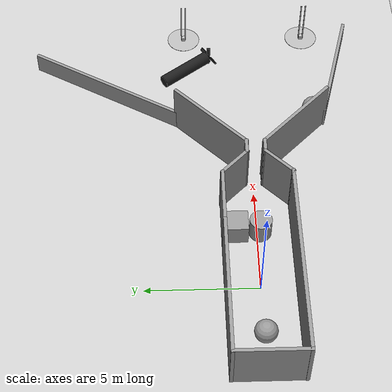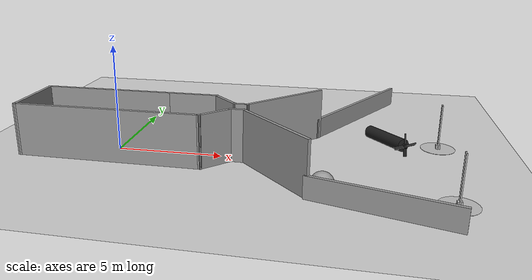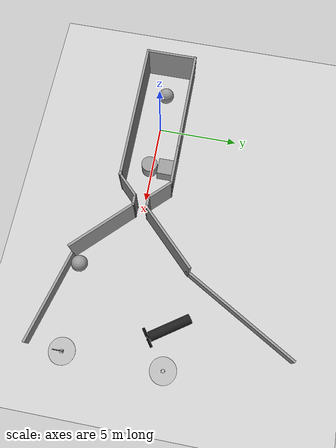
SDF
<sdf version="1.7">
 <world name="default">
  <light name="sun" type="directional">
   <pose>0 0 10 0 -0 0</pose>
   <diffuse>0.8 0.8 0.8 1</diffuse>
   <specular>0.2 0.2 0.2 1</specular>
   <attenuation>
    <range>1000</range>
    <constant>0.9</constant>
    <linear>0.01</linear>
    <quadratic>0.001</quadratic>
   </attenuation>
   <direction>-0.5 0.1 -0.9</direction>
   <spot><inner_angle>0</inner_angle><outer_angle>0</outer_angle><falloff>0</falloff></spot>
  </light>
  <model name="ground_plane">
   <static>1</static>
   <link name="link">
    <collision name="collision">
     <geometry><plane><normal>0 0 1</normal><size>100 100</size></plane></geometry>
     <surface><friction><ode><mu>100</mu><mu2>50</mu2></ode></friction></surface>
    </collision>
    <visual name="visual">
     <cast_shadows>0</cast_shadows>
     <geometry><plane><normal>0 0 1</normal><size>100 100</size></plane></geometry>
     <material>
      <script><uri>file://media/materials/scripts/gazebo.material</uri><name>Gazebo/Grey</name></script>
     </material>
    </visual>
   </link>
  </model>
  <gravity>0 0 -9.8</gravity>
  <magnetic_field>6e-06 2.3e-05 -4.2e-05</magnetic_field>
  <atmosphere type="adiabatic"/>
  <physics type="ode">
   <max_step_size>0.001</max_step_size>
   <real_time_factor>1</real_time_factor>
   <real_time_update_rate>1000</real_time_update_rate>
  </physics>
  <scene><ambient>0.4 0.4 0.4 1</ambient><background>0.7 0.7 0.7 1</background><shadows>1</shadows></scene>
  <audio><device>default</device></audio>
  <spherical_coordinates>
   <surface_model>EARTH_WGS84</surface_model>
   <latitude_deg>0</latitude_deg>
   <longitude_deg>0</longitude_deg>
   <elevation>0</elevation>
   <heading_deg>0</heading_deg>
  </spherical_coordinates>
  <model name="test_room">
   <pose>2.5 -0.05 0 0 -0 0</pose>
   <link name="Wall_12">
    <collision name="Wall_12_Collision">
     <geometry><box><size>8.77828 0.15 2.5</size></box></geometry>
     <pose>0 0 1.25 0 -0 0</pose>
    </collision>
    <visual name="Wall_12_Visual">
     <pose>0 0 1.25 0 -0 0</pose>
     <geometry><box><size>8.77828 0.15 2.5</size></box></geometry>
     <material>
      <script><uri>file://media/materials/scripts/gazebo.material</uri><name>Gazebo/Grey</name></script>
      <ambient>1 1 1 1</ambient>
     </material>
     <meta><layer>0</layer></meta>
    </visual>
    <pose>-2.46907 -1.55212 0 0 -0 0.002016</pose>
   </link>
   <link name="Wall_13">
    <collision name="Wall_13_Collision">
     <geometry><box><size>0.25 0.15 2.5</size></box></geometry>
     <pose>0 0 1.25 0 -0 0</pose>
    </collision>
    <visual name="Wall_13_Visual">
     <pose>0 0 1.25 0 -0 0</pose>
     <geometry><box><size>0.25 0.15 2.5</size></box></geometry>
     <material>
      <script><uri>file://media/materials/scripts/gazebo.material</uri><name>Gazebo/Grey</name></script>
      <ambient>1 1 1 1</ambient>
     </material>
     <meta><layer>0</layer></meta>
    </visual>
    <pose>1.89506 -1.54343 0 0 -0 0</pose>
   </link>
   <link name="Wall_14">
    <collision name="Wall_14_Collision">
     <geometry><box><size>1.75 0.15 2.5</size></box></geometry>
     <pose>0 0 1.25 0 -0 0</pose>
    </collision>
    <visual name="Wall_14_Visual">
     <pose>0 0 1.25 0 -0 0</pose>
     <geometry><box><size>1.75 0.15 2.5</size></box></geometry>
     <material>
      <script><uri>file://media/materials/scripts/gazebo.material</uri><name>Gazebo/Grey</name></script>
      <ambient>1 1 1 1</ambient>
     </material>
     <meta><layer>0</layer></meta>
    </visual>
    <pose>2.51074 -0.977739 0 0 -0 0.785398</pose>
   </link>
   <link name="Wall_15">
    <collision name="Wall_15_Collision">
     <geometry><box><size>0.75 0.15 2.5</size></box></geometry>
     <pose>0 0 1.25 0 -0 0</pose>
    </collision>
    <visual name="Wall_15_Visual">
     <pose>0 0 1.25 0 -0 0</pose>
     <geometry><box><size>0.75 0.15 2.5</size></box></geometry>
     <material>
      <script><uri>file://media/materials/scripts/gazebo.material</uri><name>Gazebo/Grey</name></script>
      <ambient>1 1 1 1</ambient>
     </material>
     <meta><layer>0</layer></meta>
    </visual>
    <pose>3.37643 -0.412054 0 0 -0 0</pose>
   </link>
   <link name="Wall_17">
    <collision name="Wall_17_Collision">
     <geometry><box><size>0.75 0.15 2.5</size></box></geometry>
     <pose>0 0 1.25 0 -0 0</pose>
    </collision>
    <visual name="Wall_17_Visual">
     <pose>0 0 1.25 0 -0 0</pose>
     <geometry><box><size>0.75 0.15 2.5</size></box></geometry>
     <material>
      <script><uri>file://media/materials/scripts/gazebo.material</uri><name>Gazebo/Grey</name></script>
      <ambient>1 1 1 1</ambient>
     </material>
     <meta><layer>0</layer></meta>
    </visual>
    <pose>3.37643 0.412054 0 0 -0 0</pose>
   </link>
   <link name="Wall_2">
    <collision name="Wall_2_Collision">
     <geometry><box><size>6.52829 0.15 2.5</size></box></geometry>
     <pose>0 0 1.25 0 -0 0</pose>
    </collision>
    <visual name="Wall_2_Visual">
     <pose>0 0 1.25 0 -0 0</pose>
     <geometry><box><size>6.52829 0.15 2.5</size></box></geometry>
     <material>
      <script><uri>file://media/materials/scripts/gazebo.material</uri><name>Gazebo/Grey</name></script>
      <ambient>1 1 1 1</ambient>
     </material>
     <meta><layer>0</layer></meta>
    </visual>
    <pose>-3.59407 1.53473 0 0 -0 -3.13887</pose>
   </link>
   <link name="Wall_27">
    <collision name="Wall_27_Collision">
     <geometry><box><size>4.5 0.15 2.5</size></box></geometry>
     <pose>0 0 1.25 0 -0 0</pose>
    </collision>
    <visual name="Wall_27_Visual">
     <pose>0 0 1.25 0 -0 0</pose>
     <geometry><box><size>4.5 0.15 2.5</size></box></geometry>
     <material>
      <script><uri>file://media/materials/scripts/gazebo.material</uri><name>Gazebo/Grey</name></script>
      <ambient>1 1 1 1</ambient>
     </material>
     <meta><layer>0</layer></meta>
    </visual>
    <pose>5.21439 1.95001 0 0 -0 0.785398</pose>
   </link>
   <link name="Wall_29">
    <collision name="Wall_29_Collision">
     <geometry><box><size>4.5 0.15 2.5</size></box></geometry>
     <pose>0 0 1.25 0 -0 0</pose>
    </collision>
    <visual name="Wall_29_Visual">
     <pose>0 0 1.25 0 -0 0</pose>
     <geometry><box><size>4.5 0.15 2.5</size></box></geometry>
     <material>
      <script><uri>file://media/materials/scripts/gazebo.material</uri><name>Gazebo/Grey</name></script>
      <ambient>1 1 1 1</ambient>
     </material>
     <meta><layer>0</layer></meta>
    </visual>
    <pose>5.21439 -1.95001 0 0 -0 -0.785398</pose>
   </link>
   <link name="Wall_3">
    <collision name="Wall_3_Collision">
     <geometry><box><size>3.23685 0.15 2.5</size></box></geometry>
     <pose>0 0 1.25 0 -0 0</pose>
    </collision>
    <visual name="Wall_3_Visual">
     <pose>0 0 1.25 0 -0 0</pose>
     <geometry><box><size>3.23685 0.15 2.5</size></box></geometry>
     <material>
      <script><uri>file://media/materials/scripts/gazebo.material</uri><name>Gazebo/Grey</name></script>
      <ambient>1 1 1 1</ambient>
     </material>
     <meta><layer>0</layer></meta>
    </visual>
    <pose>-6.76581 -0.017391 0 0 -0 -1.5708</pose>
   </link>
   <link name="Wall_6">
    <collision name="Wall_6_Collision">
     <geometry><box><size>2.5 0.15 2.5</size></box></geometry>
     <pose>0 0 1.25 0 -0 0</pose>
    </collision>
    <visual name="Wall_6_Visual">
     <pose>0 0 1.25 0 -0 0</pose>
     <geometry><box><size>2.5 0.15 2.5</size></box></geometry>
     <material>
      <script><uri>file://media/materials/scripts/gazebo.material</uri><name>Gazebo/Grey</name></script>
      <ambient>1 1 1 1</ambient>
     </material>
     <meta><layer>0</layer></meta>
    </visual>
    <pose>0.770058 1.54343 0 0 -0 0</pose>
   </link>
   <link name="Wall_7">
    <collision name="Wall_7_Collision">
     <geometry><box><size>1.75 0.15 2.5</size></box></geometry>
     <pose>0 0 1.25 0 -0 0</pose>
    </collision>
    <visual name="Wall_7_Visual">
     <pose>0 0 1.25 0 -0 0</pose>
     <geometry><box><size>1.75 0.15 2.5</size></box></geometry>
     <material>
      <script><uri>file://media/materials/scripts/gazebo.material</uri><name>Gazebo/Grey</name></script>
      <ambient>1 1 1 1</ambient>
     </material>
     <meta><layer>0</layer></meta>
    </visual>
    <pose>2.51074 0.977739 0 0 -0 -0.785398</pose>
   </link>
   <static>1</static>
  </model>
  <model name="mass_on_rails">
   <link name="base">
    <inertial>
     <mass>100</mass>
     <inertia><ixx>1</ixx><ixy>0</ixy><ixz>0</ixz><iyy>1</iyy><iyz>0</iyz><izz>1</izz></inertia>
    </inertial>
    <visual name="vis_base">
     <pose>0 0 0.01 0 -0 0</pose>
     <geometry><cylinder><radius>0.8</radius><length>0.01</length></cylinder></geometry>
    </visual>
    <collision name="col_base">
     <pose>0 0 0.01 0 -0 0</pose>
     <geometry><cylinder><radius>0.8</radius><length>0.01</length></cylinder></geometry>
    </collision>
    <visual name="vis_rail1">
     <pose>0 0.1 1.1 0 -0 0</pose>
     <geometry><box><size>0.05 0.05 2.2</size></box></geometry>
    </visual>
    <collision name="col_rail1">
     <pose>0 0.1 1.1 0 -0 0</pose>
     <geometry><box><size>0.05 0.05 2.2</size></box></geometry>
    </collision>
    <visual name="vis_rail2">
     <pose>0 -0.1 1.1 0 -0 0</pose>
     <geometry><box><size>0.05 0.05 2.2</size></box></geometry>
    </visual>
    <collision name="col_rail2">
     <pose>0 -0.1 1.1 0 -0 0</pose>
     <geometry><box><size>0.05 0.05 2.2</size></box></geometry>
    </collision>
   </link>
   <link name="mass">
    <inertial>
     <mass>0.1</mass>
     <pose>0 0 0.1 0 -0 0</pose>
     <inertia><ixx>0.00067</ixx><ixy>0</ixy><ixz>0</ixz><iyy>0.00067</iyy><iyz>0</iyz><izz>0.00067</izz></inertia>
    </inertial>
    <visual name="visual">
     <pose>0 0 0.1 0 -0 0</pose>
     <geometry><box><size>0.2 0.2 0.2</size></box></geometry>
    </visual>
    <collision name="collision">
     <pose>0 0 0.1 0 -0 0</pose>
     <geometry><box><size>0.2 0.2 0.2</size></box></geometry>
    </collision>
   </link>
   <joint name="joint" type="prismatic">
    <parent>base</parent>
    <child>mass</child>
    <axis>
     <dynamics>
      <damping>0.01</damping>
      <friction>0.01</friction>
      <spring_reference>0</spring_reference>
      <spring_stiffness>0</spring_stiffness>
     </dynamics>
     <xyz>0 0 1</xyz>
     <limit><lower>0</lower><upper>2</upper></limit>
    </axis>
   </joint>
   <pose>15 3 -0 1e-06 0 -1.2e-05</pose>
  </model>
  <model name="mass_on_rails_clone">
   <link name="base">
    <inertial>
     <mass>100</mass>
     <inertia><ixx>1</ixx><ixy>0</ixy><ixz>0</ixz><iyy>1</iyy><iyz>0</iyz><izz>1</izz></inertia>
    </inertial>
    <visual name="vis_base">
     <pose>0 0 0.01 0 -0 0</pose>
     <geometry><cylinder><radius>0.8</radius><length>0.01</length></cylinder></geometry>
    </visual>
    <collision name="col_base">
     <pose>0 0 0.01 0 -0 0</pose>
     <geometry><cylinder><radius>0.8</radius><length>0.01</length></cylinder></geometry>
    </collision>
    <visual name="vis_rail1">
     <pose>0 0.1 1.1 0 -0 0</pose>
     <geometry><box><size>0.05 0.05 2.2</size></box></geometry>
    </visual>
    <collision name="col_rail1">
     <pose>0 0.1 1.1 0 -0 0</pose>
     <geometry><box><size>0.05 0.05 2.2</size></box></geometry>
    </collision>
    <visual name="vis_rail2">
     <pose>0 -0.1 1.1 0 -0 0</pose>
     <geometry><box><size>0.05 0.05 2.2</size></box></geometry>
    </visual>
    <collision name="col_rail2">
     <pose>0 -0.1 1.1 0 -0 0</pose>
     <geometry><box><size>0.05 0.05 2.2</size></box></geometry>
    </collision>
   </link>
   <link name="mass">
    <inertial>
     <mass>0.1</mass>
     <pose>0 0 0.1 0 -0 0</pose>
     <inertia><ixx>0.00067</ixx><ixy>0</ixy><ixz>0</ixz><iyy>0.00067</iyy><iyz>0</iyz><izz>0.00067</izz></inertia>
    </inertial>
    <visual name="visual">
     <pose>0 0 0.1 0 -0 0</pose>
     <geometry><box><size>0.2 0.2 0.2</size></box></geometry>
    </visual>
    <collision name="collision">
     <pose>0 0 0.1 0 -0 0</pose>
     <geometry><box><size>0.2 0.2 0.2</size></box></geometry>
    </collision>
   </link>
   <joint name="joint" type="prismatic">
    <parent>base</parent>
    <child>mass</child>
    <axis>
     <dynamics>
      <damping>0.01</damping>
      <friction>0.01</friction>
      <spring_reference>0</spring_reference>
      <spring_stiffness>0</spring_stiffness>
     </dynamics>
     <xyz>0 0 1</xyz>
     <limit><lower>0</lower><upper>2</upper></limit>
    </axis>
   </joint>
   <pose>15 -3 -0 0 0 -2.1e-05</pose>
  </model>
  <model name="submarine_sinking">
   <pose>13.1631 2.05888 0.449061 0.653971 1.49147 -0.316009</pose>
   <link name="body">
    <pose>0 0 -1.07935 0 -0 0</pose>
    <inertial>
     <mass>1102.7</mass>
     <inertia><ixx>645.998</ixx><ixy>0</ixy><ixz>0</ixz><iyy>645.998</iyy><iyz>0</iyz><izz>49.6215</izz></inertia>
    </inertial>
    <visual name="body_visual">
     <geometry><cylinder><radius>0.3</radius><length>2.6</length></cylinder></geometry>
     <material>
      <script><uri>file://media/materials/scripts/gazebo.material</uri><name>Gazebo/Black</name></script>
     </material>
    </visual>
    <collision name="body_collision">
     <geometry><cylinder><radius>0.3</radius><length>2.6</length></cylinder></geometry>
    </collision>
    <visual name="spacer_visual">
     <pose>0 0 1.37855 0 -0 0</pose>
     <geometry><cylinder><radius>0.0933402</radius><length>0.127211</length></cylinder></geometry>
     <material>
      <script><uri>file://media/materials/scripts/gazebo.material</uri><name>Gazebo/Black</name></script>
     </material>
    </visual>
   </link>
   <link name="propeller">
    <pose>0 0 0.3455 3.14159 -0 0</pose>
    <inertial>
     <mass>25.2312</mass>
     <inertia><ixx>0.531907</ixx><ixy>0</ixy><ixz>0</ixz><iyy>0.531907</iyy><iyz>0</iyz><izz>1.0513</izz></inertia>
    </inertial>
    <visual name="blade1_visual">
     <pose>0.34334 0 0 0.785398 -0 0</pose>
     <geometry><box><size>0.5 0.154178 0.05455</size></box></geometry>
     <material>
      <script><uri>file://media/materials/scripts/gazebo.material</uri><name>Gazebo/Black</name></script>
     </material>
    </visual>
    <collision name="blade1_collision">
     <pose>0.34334 0 0 0.785398 -0 0</pose>
     <geometry><box><size>0.5 0.154178 0.05455</size></box></geometry>
    </collision>
    <visual name="blade2_visual">
     <pose>0 0.34334 0 0.785398 0 1.5708</pose>
     <geometry><box><size>0.5 0.154178 0.05455</size></box></geometry>
     <material>
      <script><uri>file://media/materials/scripts/gazebo.material</uri><name>Gazebo/Black</name></script>
     </material>
    </visual>
    <collision name="blade2_collision">
     <pose>0 0.34334 0 0.785398 0 1.5708</pose>
     <geometry><box><size>0.5 0.154178 0.05455</size></box></geometry>
    </collision>
    <visual name="blade3_visual">
     <pose>-0.34334 -0 0 -0.785398 0 0</pose>
     <geometry><box><size>0.5 0.154178 0.05455</size></box></geometry>
     <material>
      <script><uri>file://media/materials/scripts/gazebo.material</uri><name>Gazebo/Black</name></script>
     </material>
    </visual>
    <collision name="blade3_collision">
     <pose>-0.34334 -0 0 -0.785398 0 0</pose>
     <geometry><box><size>0.5 0.154178 0.05455</size></box></geometry>
    </collision>
    <visual name="blade4_visual">
     <pose>-0 -0.34334 0 -0.785398 -0 1.5708</pose>
     <geometry><box><size>0.5 0.154178 0.05455</size></box></geometry>
     <material>
      <script><uri>file://media/materials/scripts/gazebo.material</uri><name>Gazebo/Black</name></script>
     </material>
    </visual>
    <collision name="blade4_collision">
     <pose>-0 -0.34334 0 -0.785398 -0 1.5708</pose>
     <geometry><box><size>0.5 0.154178 0.05455</size></box></geometry>
    </collision>
   </link>
   <joint name="spinning_joint" type="revolute">
    <parent>body</parent>
    <child>propeller</child>
    <axis>
     <xyz expressed_in="__model__">0 0 1</xyz>
     <limit><lower>-1e+12</lower><upper>1e+12</upper><effort>-1</effort><velocity>-1</velocity></limit>
     <dynamics><spring_reference>0</spring_reference><spring_stiffness>0</spring_stiffness></dynamics>
    </axis>
   </joint>
   <plugin name="buoyancy" filename="libBuoyancyPlugin.so"><fluid_density>999.1026</fluid_density></plugin>
  </model>
  <model name="unit_sphere">
   <pose>9.83056 -3.10847 0.5 0 -0 0</pose>
   <link name="link">
    <inertial>
     <mass>1</mass>
     <inertia><ixx>0.1</ixx><ixy>0</ixy><ixz>0</ixz><iyy>0.1</iyy><iyz>0</iyz><izz>0.1</izz></inertia>
    </inertial>
    <collision name="collision"><geometry><sphere><radius>0.5</radius></sphere></geometry></collision>
    <visual name="visual">
     <geometry><sphere><radius>0.5</radius></sphere></geometry>
     <material>
      <script><name>Gazebo/Grey</name><uri>file://media/materials/scripts/gazebo.material</uri></script>
     </material>
    </visual>
   </link>
  </model>
  <model name="add_wall">
   <pose>7.46976 2.5486 0 0 -0 0</pose>
   <link name="Wall_3">
    <collision name="Wall_3_Collision">
     <geometry><box><size>8 0.15 1</size></box></geometry>
     <pose>0 0 0.5 0 -0 0</pose>
    </collision>
    <visual name="Wall_3_Visual">
     <pose>0 0 0.5 0 -0 0</pose>
     <geometry><box><size>8 0.15 1</size></box></geometry>
     <material>
      <script><uri>file://media/materials/scripts/gazebo.material</uri><name>Gazebo/Grey</name></script>
      <ambient>1 1 1 1</ambient>
     </material>
     <meta><layer>0</layer></meta>
    </visual>
    <pose>3.68824 4.21469 0 0 -0 -2.09441</pose>
   </link>
   <link name="Wall_5">
    <collision name="Wall_5_Collision">
     <geometry><box><size>6 0.15 1</size></box></geometry>
     <pose>0 0 0.5 0 -0 0</pose>
    </collision>
    <visual name="Wall_5_Visual">
     <pose>0 0 0.5 0 -0 0</pose>
     <geometry><box><size>6 0.15 1</size></box></geometry>
     <material>
      <script><uri>file://media/materials/scripts/gazebo.material</uri><name>Gazebo/Grey</name></script>
      <ambient>1 1 1 1</ambient>
     </material>
     <meta><layer>0</layer></meta>
    </visual>
    <pose>4.55507 -6.86735 0 0 -0 -0.261799</pose>
   </link>
   <static>1</static>
  </model>
  <model name="unit_box_0">
   <pose>2.89887 0.899853 0.499995 0 -1e-05 0</pose>
   <link name="link">
    <inertial>
     <mass>1</mass>
     <inertia>
      <ixx>0.166667</ixx>
      <ixy>0</ixy>
      <ixz>0</ixz>
      <iyy>0.166667</iyy>
      <iyz>0</iyz>
      <izz>0.166667</izz>
     </inertia>
    </inertial>
    <collision name="collision"><geometry><box><size>1 1 1</size></box></geometry></collision>
    <visual name="visual">
     <geometry><box><size>1 1 1</size></box></geometry>
     <material>
      <script><name>Gazebo/Grey</name><uri>file://media/materials/scripts/gazebo.material</uri></script>
     </material>
    </visual>
   </link>
  </model>
  <model name="unit_cylinder">
   <pose>2.8913 -0.156093 0.499997 3e-06 3e-06 0</pose>
   <link name="link">
    <inertial>
     <mass>1</mass>
     <inertia><ixx>0.145833</ixx><ixy>0</ixy><ixz>0</ixz><iyy>0.145833</iyy><iyz>0</iyz><izz>0.125</izz></inertia>
    </inertial>
    <collision name="collision">
     <geometry><cylinder><radius>0.5</radius><length>1</length></cylinder></geometry>
    </collision>
    <visual name="visual">
     <geometry><cylinder><radius>0.5</radius><length>1</length></cylinder></geometry>
     <material>
      <script><name>Gazebo/Grey</name><uri>file://media/materials/scripts/gazebo.material</uri></script>
     </material>
    </visual>
   </link>
  </model>
  <model name="unit_sphere_0">
   <pose>-2.34508 -0.051519 0.5 0 -0 0</pose>
   <link name="link">
    <inertial>
     <mass>1</mass>
     <inertia><ixx>0.1</ixx><ixy>0</ixy><ixz>0</ixz><iyy>0.1</iyy><iyz>0</iyz><izz>0.1</izz></inertia>
    </inertial>
    <collision name="collision"><geometry><sphere><radius>0.5</radius></sphere></geometry></collision>
    <visual name="visual">
     <geometry><sphere><radius>0.5</radius></sphere></geometry>
     <material>
      <script><name>Gazebo/Grey</name><uri>file://media/materials/scripts/gazebo.material</uri></script>
     </material>
    </visual>
   </link>
  </model>
 </world>
</sdf>
